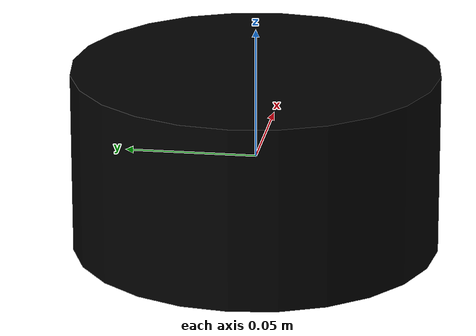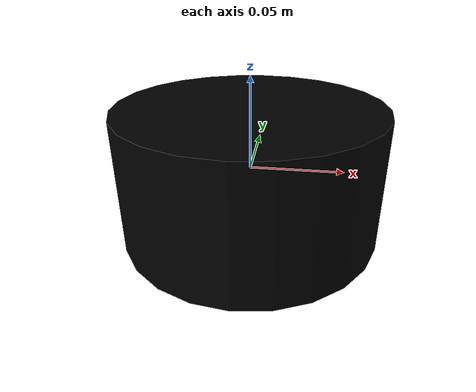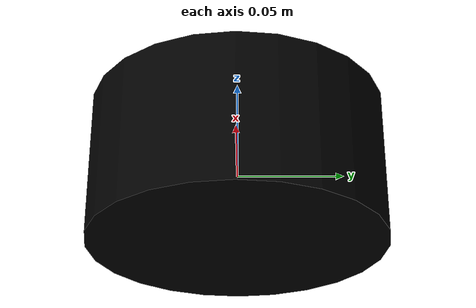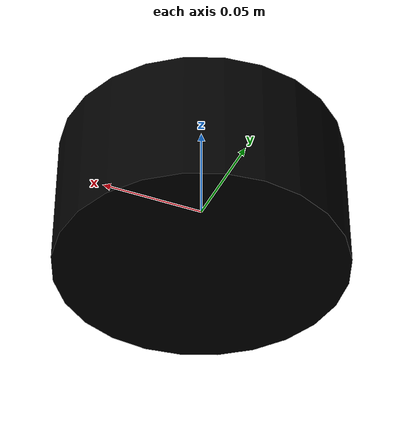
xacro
<?xml version="1.0"?>
<robot xmlns:xacro="http://www.ros.org/wiki/xacro" >

    <xacro:property name="lidar_radius" value="0.07" />
    <xacro:property name="lidar_width" value="0.07" />
    <xacro:property name="lidar_mass" value="0.1" />

    <link name="lidar_link">
        <visual>
            <origin xyz="0 0 0" rpy="0 0 0" />
            <geometry>
               <cylinder radius="${lidar_radius}" length="${lidar_width}" />
            </geometry>
            <material name="black">
                <color rgba="0 0 0 1" />
            </material>
        </visual>
        <collision>
            <origin xyz="0 0 0" rpy="0 0 0" />
            <geometry>
               <cylinder radius="${lidar_radius}" length="${lidar_width}" />
            </geometry>
        </collision>

        <xacro:cylinder_inertial m="${lidar_mass}" r="${lidar_radius}" h="${lidar_width}" o_xyz="0 0 0" o_rpy="0 0 0" />
    </link>

     <gazebo reference="lidar_link">
    <sensor name="gpu_lidar" type="gpu_lidar">
      <update_rate>10</update_rate>
      <topic>scan</topic>
      <gz_frame_id>lidar_link</gz_frame_id>
      <lidar>
        <scan>
          <horizontal>
            <samples>720</samples>
            <!--(max_angle-min_angle)/samples * resolution -->
            <resolution>1</resolution>
            <min_angle>-3.14156</min_angle>
            <max_angle>3.14156</max_angle>
          </horizontal>
          <!-- Dirty hack for fake lidar detections with ogre 1 rendering in VM -->
        </scan>
        <range>
          <min>0.05</min>
          <max>10.0</max>
          <resolution>0.01</resolution>
        </range>
        <noise>
            <type>gaussian</type>
            <mean>0.0</mean>
            <stddev>0.01</stddev>
        </noise>
        <frame_id>lidar_link</frame_id>
      </lidar>
      <always_on>1</always_on>
      <visualize>true</visualize>
    </sensor>
  </gazebo>

</robot>
